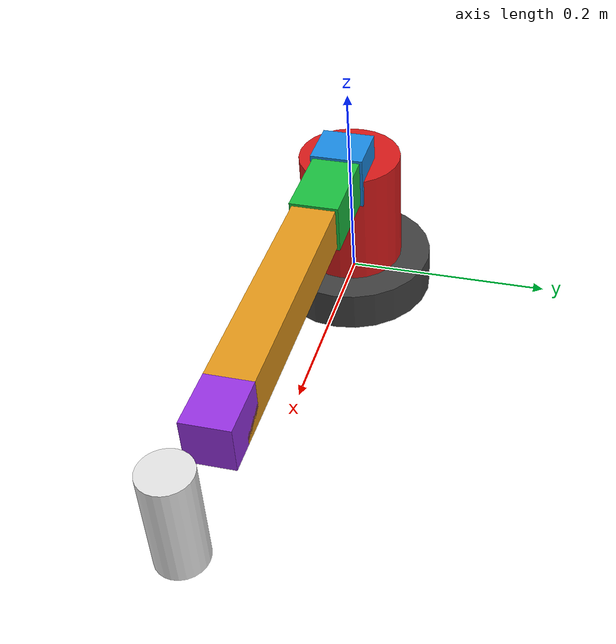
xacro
<?xml version="1.0"?>
<robot name="five_dof_cobot_rollJ4" xmlns:xacro="http://www.ros.org/wiki/xacro">
  <!-- 기본 파라미터 -->
  <xacro:property name="L1" value="0.13461"/>
  <xacro:property name="L2" value="0.0475"/>
  <xacro:property name="L3" value="0.075"/>
  <xacro:property name="L4" value="0.24168"/>
  <xacro:property name="TOOL" value="0.08597"/>

  <xacro:property name="m1" value="3.183"/>
  <xacro:property name="m2" value="0.230"/>
  <xacro:property name="m3" value="0.400"/>
  <xacro:property name="m4" value="0.200"/>
  <xacro:property name="m5" value="0.100"/>

  <xacro:property name="Ixx1" value="20"/>
  <xacro:property name="Iyy1" value="40"/>
  <xacro:property name="Izz1" value="60"/>
  <xacro:property name="Ixx2" value="10"/>
  <xacro:property name="Iyy2" value="30"/>
  <xacro:property name="Izz2" value="50"/>
  <xacro:property name="Ixx3" value="2"/>
  <xacro:property name="Iyy3" value="20"/>
  <xacro:property name="Izz3" value="10"/>
  <xacro:property name="Ixx4" value="1"/>
  <xacro:property name="Iyy4" value="30"/>
  <xacro:property name="Izz4" value="2"/>
  <xacro:property name="Ixx5" value="0.2"/>
  <xacro:property name="Iyy5" value="0.02"/>
  <xacro:property name="Izz5" value="0.1"/>

  <xacro:property name="j1_lower" value="0"/>
  <xacro:property name="j1_upper" value="5000"/>
  <xacro:property name="j1_vel" value="2.5"/>
  <xacro:property name="j2_lower" value="0"/>
  <xacro:property name="j2_upper" value="5000"/>
  <xacro:property name="j2_vel" value="2.5"/>
  <xacro:property name="j3_lower" value="0"/>
  <xacro:property name="j3_upper" value="5000"/>self.sub_movej = self.create_subscription(Float64MultiArray, '/robot/movej_cmd', self.on_cmd, 10, callback_group=self.cb_motion)
  <xacro:property name="j3_vel" value="2.5"/>
  <xacro:property name="j4_lower" value="0"/>
  <xacro:property name="j4_upper" value="5000"/>
  <xacro:property name="j4_vel" value="2.5"/>
  <xacro:property name="j5_lower" value="0"/>
  <xacro:property name="j5_upper" value="5000"/>
  <xacro:property name="j5_vel" value="2.5"/>

  <xacro:property name="belt_type" value="2GT-5mm"/>
  <xacro:property name="gear_ratio_j1" value="3"/>
  <xacro:property name="gear_ratio_j2" value="4"/>
  <xacro:property name="gear_ratio_j3" value="40"/>
  <xacro:property name="gear_ratio_j4" value="3"/>
  <xacro:property name="gear_ratio_j5" value="3"/>

  <material name="mat_base"><color rgba="0.25 0.25 0.25 1.0"/></material>
  <material name="mat_l1"><color rgba="0.85 0.10 0.10 1.0"/></material>
  <material name="mat_l2"><color rgba="0.10 0.55 0.90 1.0"/></material>
  <material name="mat_l3"><color rgba="0.10 0.75 0.25 1.0"/></material>
  <material name="mat_l4"><color rgba="0.90 0.60 0.10 1.0"/></material>
  <material name="mat_l5"><color rgba="0.60 0.20 0.90 1.0"/></material>
  <material name="mat_ee"><color rgba="0.90 0.90 0.90 1.0"/></material>

  <link name="base_link">
    <visual>
      <geometry><cylinder radius="0.08" length="0.04"/></geometry>
      <material name="mat_base"/>
    </visual>
    <collision><geometry><cylinder radius="0.08" length="0.04"/></geometry></collision>
    <inertial>
      <origin xyz="0 0 0" rpy="0 0 0"/>
      <mass value="4.113"/>
      <inertia ixx="33.2" iyy="120.02" izz="120.21" ixy="0" ixz="0" iyz="0"/>
    </inertial>
  </link>

  <link name="link1">
    <visual>
      <origin xyz="0 0 ${L1/2}" rpy="0 0 0"/>
      <geometry><cylinder radius="0.05" length="${L1}"/></geometry>
      <material name="mat_l1"/>
    </visual>
    <collision>
      <origin xyz="0 0 ${L1/2}" rpy="0 0 0"/>
      <geometry><cylinder radius="0.05" length="${L1}"/></geometry>
    </collision>
    <inertial>
      <origin xyz="0 0 ${L1/2}" rpy="0 0 0"/>
      <mass value="${m1}"/>
      <inertia ixx="${Ixx1}" iyy="${Iyy1}" izz="${Izz1}" ixy="0" ixz="0" iyz="0"/>
    </inertial>
  </link>

  <link name="link2">
    <visual>
      <origin xyz="${L2/2} 0 0" rpy="0 0 0"/>
      <geometry><box size="${L2} 0.05 0.05"/></geometry>
      <material name="mat_l2"/>
    </visual>
    <collision>
      <origin xyz="${L2/2} 0 0" rpy="0 0 0"/>
      <geometry><box size="${L2} 0.05 0.05"/></geometry>
    </collision>
    <inertial>
      <origin xyz="${L2/2} 0 0" rpy="0 0 0"/>
      <mass value="${m2}"/>
      <inertia ixx="${Ixx2}" iyy="${Iyy2}" izz="${Izz2}" ixy="0" ixz="0" iyz="0"/>
    </inertial>
  </link>

  <link name="link3">
    <visual>
      <origin xyz="${L3/2} 0 0" rpy="0 0 0"/>
      <geometry><box size="${L3} 0.045 0.045"/></geometry>
      <material name="mat_l3"/>
    </visual>
    <collision>
      <origin xyz="${L3/2} 0 0" rpy="0 0 0"/>
      <geometry><box size="${L3} 0.045 0.045"/></geometry>
    </collision>
    <inertial>
      <origin xyz="${L3/2} 0 0" rpy="0 0 0"/>
      <mass value="${m3}"/>
      <inertia ixx="${Ixx3}" iyy="${Iyy3}" izz="${Izz3}" ixy="0" ixz="0" iyz="0"/>
    </inertial>
  </link>

  <link name="link4">
    <visual>
      <origin xyz="${L4/2} 0 0" rpy="0 0 0"/>
      <geometry><box size="${L4} 0.04 0.04"/></geometry>
      <material name="mat_l4"/>
    </visual>
    <collision>
      <origin xyz="${L4/2} 0 0" rpy="0 0 0"/>
      <geometry><box size="${L4} 0.04 0.04"/></geometry>
    </collision>
    <inertial>
      <origin xyz="${L4/2} 0 0" rpy="0 0 0"/>
      <mass value="${m4}"/>
      <inertia ixx="${Ixx4}" iyy="${Iyy4}" izz="${Izz4}" ixy="0" ixz="0" iyz="0"/>
    </inertial>
  </link>

  <link name="link5">
    <visual>
      <geometry><box size="0.05 0.04 0.04"/></geometry>
      <material name="mat_l5"/>
    </visual>
    <collision><geometry><box size="0.05 0.04 0.04"/></geometry></collision>
    <inertial>
      <mass value="${m5}"/>
      <inertia ixx="${Ixx5}" iyy="${Iyy5}" izz="${Izz5}" ixy="0" ixz="0" iyz="0"/>
    </inertial>
  </link>

  <link name="ee_link">
    <visual>
      <origin xyz="${TOOL} 0 0" rpy="0 0 0"/>
      <geometry><cylinder radius="0.02" length="${TOOL}"/></geometry>
      <material name="mat_ee"/>
    </visual>
    <collision>
      <origin xyz="${TOOL} 0 0" rpy="0 0 0"/>
      <geometry><cylinder radius="0.02" length="${TOOL}"/></geometry>
    </collision>
  </link>

  <joint name="joint1_base_yaw" type="revolute">
    <parent link="base_link"/><child link="link1"/>
    <origin xyz="0 0 0" rpy="0 0 0"/>
    <axis xyz="0 0 1"/>
    <limit lower="${j1_lower}" upper="${j1_upper}" velocity="${j1_vel}" effort="101.2"/>
  </joint>

  <joint name="joint2_shoulder_pitch" type="revolute">
    <parent link="link1"/><child link="link2"/>
    <origin xyz="0 0 ${L1}" rpy="0 0 0"/>
    <axis xyz="0 1 0"/>
    <limit lower="${j2_lower}" upper="${j2_upper}" velocity="${j2_vel}" effort="33.6"/>
  </joint>

  <joint name="joint3_elbow_pitch" type="revolute">
    <parent link="link2"/><child link="link3"/>
    <origin xyz="${L2} 0 0" rpy="0 0 0"/>
    <axis xyz="0 1 0"/>
    <limit lower="${j3_lower}" upper="${j3_upper}" velocity="${j3_vel}" effort="33.6"/>
  </joint>

  <joint name="joint4_wrist_roll" type="revolute">
    <parent link="link3"/><child link="link4"/>
    <origin xyz="${L3} 0 0" rpy="0 0 0"/>
    <axis xyz="1 0 0"/>
    <limit lower="${j4_lower}" upper="${j4_upper}" velocity="${j4_vel}" effort="33.6"/>
  </joint>

  <joint name="joint5_wrist_pitch" type="revolute">
    <parent link="link4"/><child link="link5"/>
    <origin xyz="${L4} 0 0" rpy="0 0 0"/>
    <axis xyz="0 1 0"/>
    <limit lower="${j5_lower}" upper="${j5_upper}" velocity="${j5_vel}" effort="25.2"/>
  </joint>

  <joint name="joint_ee_fixed" type="fixed">
    <parent link="link5"/><child link="ee_link"/>
    <origin xyz="0 0 0" rpy="0 0 0"/>
  </joint>
</robot>
